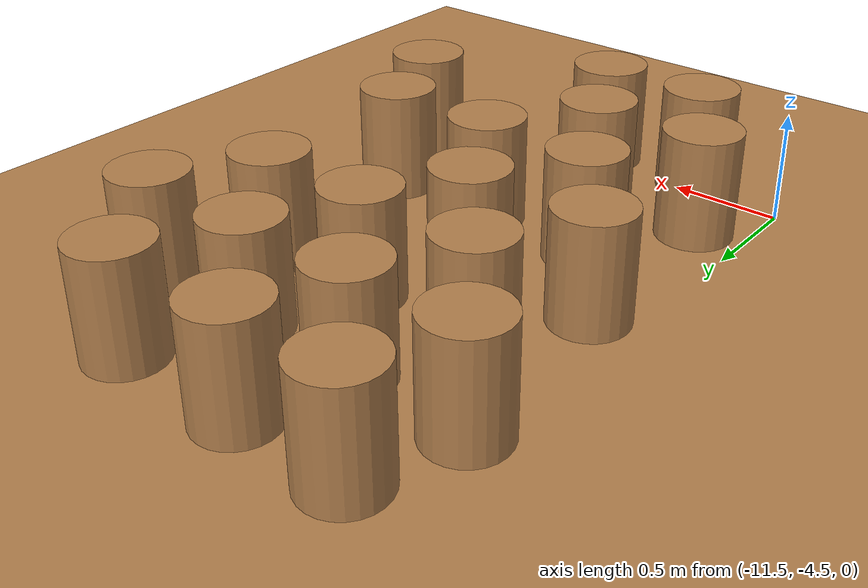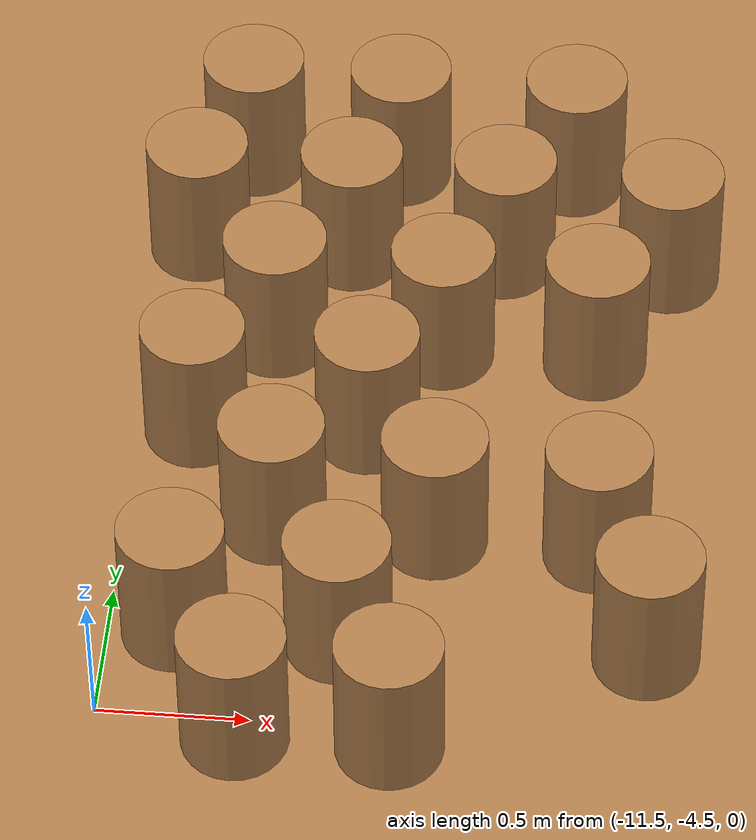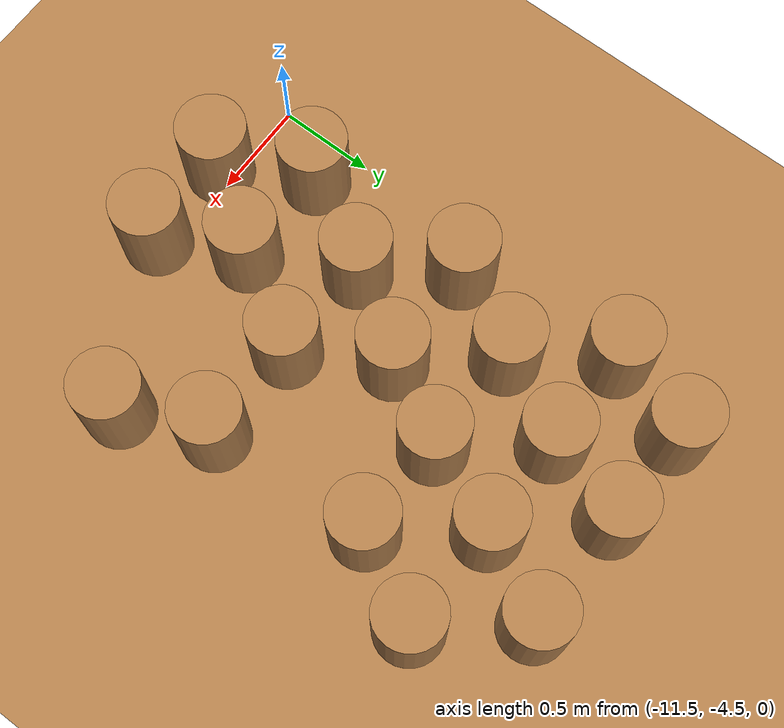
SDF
<sdf version="1.6">
 <world name="default">
  <model name="ground_plane">
   <pose>1.25 -2.75 0 0 -0 0</pose>
   <static>1</static>
   <link name="link">
    <collision name="collision">
     <geometry><plane><normal>0 0 1</normal><size>100 100</size></plane></geometry>
     <surface><friction><ode><mu>100</mu><mu2>50</mu2></ode></friction></surface>
    </collision>
    <visual name="visual">
     <cast_shadows>0</cast_shadows>
     <geometry><plane><normal>0 0 1</normal><size>32 34.75</size></plane></geometry>
     <material>
      <script><uri>file://media/materials/scripts/gazebo.material</uri><name>Gazebo/WoodFloor</name></script>
     </material>
    </visual>
   </link>
  </model>
  <model name="unit_cylinder_11_clone_clone_5_clone_35">
   <pose>-11.2814 -4.14721 0.25 0 0 -1.2e-05</pose>
   <static>1</static>
   <link name="link">
    <inertial>
     <mass>1</mass>
     <inertia><ixx>0.145833</ixx><ixy>0</ixy><ixz>0</ixz><iyy>0.145833</iyy><iyz>0</iyz><izz>0.125</izz></inertia>
    </inertial>
    <collision name="collision">
     <geometry><cylinder><radius>0.175</radius><length>0.5</length></cylinder></geometry>
    </collision>
    <visual name="visual">
     <geometry><cylinder><radius>0.175</radius><length>0.5</length></cylinder></geometry>
     <material>
      <script><name>Gazebo/Wood</name><uri>file://media/materials/scripts/gazebo.material</uri></script>
     </material>
    </visual>
   </link>
  </model>
  <model name="unit_cylinder_11_clone_clone_5_clone_36">
   <pose>-10.7505 -4.15489 0.25 0 0 -1.2e-05</pose>
   <static>1</static>
   <link name="link">
    <inertial>
     <mass>1</mass>
     <inertia><ixx>0.145833</ixx><ixy>0</ixy><ixz>0</ixz><iyy>0.145833</iyy><iyz>0</iyz><izz>0.125</izz></inertia>
    </inertial>
    <collision name="collision">
     <geometry><cylinder><radius>0.175</radius><length>0.5</length></cylinder></geometry>
    </collision>
    <visual name="visual">
     <geometry><cylinder><radius>0.175</radius><length>0.5</length></cylinder></geometry>
     <material>
      <script><name>Gazebo/Wood</name><uri>file://media/materials/scripts/gazebo.material</uri></script>
     </material>
    </visual>
   </link>
  </model>
  <model name="unit_cylinder_11_clone_clone_5_clone_38">
   <pose>-9.75939 -4.13978 0.25 0 0 -1.2e-05</pose>
   <static>1</static>
   <link name="link">
    <inertial>
     <mass>1</mass>
     <inertia><ixx>0.145833</ixx><ixy>0</ixy><ixz>0</ixz><iyy>0.145833</iyy><iyz>0</iyz><izz>0.125</izz></inertia>
    </inertial>
    <collision name="collision">
     <geometry><cylinder><radius>0.175</radius><length>0.5</length></cylinder></geometry>
    </collision>
    <visual name="visual">
     <geometry><cylinder><radius>0.175</radius><length>0.5</length></cylinder></geometry>
     <material>
      <script><name>Gazebo/Wood</name><uri>file://media/materials/scripts/gazebo.material</uri></script>
     </material>
    </visual>
   </link>
  </model>
  <model name="unit_cylinder_11_clone_clone_5_clone_44">
   <pose>-11.0092 -3.67085 0.25 0 0 -1.2e-05</pose>
   <static>1</static>
   <link name="link">
    <inertial>
     <mass>1</mass>
     <inertia><ixx>0.145833</ixx><ixy>0</ixy><ixz>0</ixz><iyy>0.145833</iyy><iyz>0</iyz><izz>0.125</izz></inertia>
    </inertial>
    <collision name="collision">
     <geometry><cylinder><radius>0.175</radius><length>0.5</length></cylinder></geometry>
    </collision>
    <visual name="visual">
     <geometry><cylinder><radius>0.175</radius><length>0.5</length></cylinder></geometry>
     <material>
      <script><name>Gazebo/Wood</name><uri>file://media/materials/scripts/gazebo.material</uri></script>
     </material>
    </visual>
   </link>
  </model>
  <model name="unit_cylinder_11_clone_clone_5_clone_45">
   <pose>-10.4774 -3.69003 0.25 0 0 -1.2e-05</pose>
   <static>1</static>
   <link name="link">
    <inertial>
     <mass>1</mass>
     <inertia><ixx>0.145833</ixx><ixy>0</ixy><ixz>0</ixz><iyy>0.145833</iyy><iyz>0</iyz><izz>0.125</izz></inertia>
    </inertial>
    <collision name="collision">
     <geometry><cylinder><radius>0.175</radius><length>0.5</length></cylinder></geometry>
    </collision>
    <visual name="visual">
     <geometry><cylinder><radius>0.175</radius><length>0.5</length></cylinder></geometry>
     <material>
      <script><name>Gazebo/Wood</name><uri>file://media/materials/scripts/gazebo.material</uri></script>
     </material>
    </visual>
   </link>
  </model>
  <model name="unit_cylinder_11_clone_clone_5_clone_46">
   <pose>-9.94585 -3.70421 0.25 0 0 -1.2e-05</pose>
   <static>1</static>
   <link name="link">
    <inertial>
     <mass>1</mass>
     <inertia><ixx>0.145833</ixx><ixy>0</ixy><ixz>0</ixz><iyy>0.145833</iyy><iyz>0</iyz><izz>0.125</izz></inertia>
    </inertial>
    <collision name="collision">
     <geometry><cylinder><radius>0.175</radius><length>0.5</length></cylinder></geometry>
    </collision>
    <visual name="visual">
     <geometry><cylinder><radius>0.175</radius><length>0.5</length></cylinder></geometry>
     <material>
      <script><name>Gazebo/Wood</name><uri>file://media/materials/scripts/gazebo.material</uri></script>
     </material>
    </visual>
   </link>
  </model>
  <model name="unit_cylinder_11_clone_clone_5_clone_53">
   <pose>-11.3129 -3.26441 0.25 0 0 -1.2e-05</pose>
   <static>1</static>
   <link name="link">
    <inertial>
     <mass>1</mass>
     <inertia><ixx>0.145833</ixx><ixy>0</ixy><ixz>0</ixz><iyy>0.145833</iyy><iyz>0</iyz><izz>0.125</izz></inertia>
    </inertial>
    <collision name="collision">
     <geometry><cylinder><radius>0.175</radius><length>0.5</length></cylinder></geometry>
    </collision>
    <visual name="visual">
     <geometry><cylinder><radius>0.175</radius><length>0.5</length></cylinder></geometry>
     <material>
      <script><name>Gazebo/Wood</name><uri>file://media/materials/scripts/gazebo.material</uri></script>
     </material>
    </visual>
   </link>
  </model>
  <model name="unit_cylinder_11_clone_clone_5_clone_54">
   <pose>-10.7369 -3.24626 0.25 0 0 -1.2e-05</pose>
   <static>1</static>
   <link name="link">
    <inertial>
     <mass>1</mass>
     <inertia><ixx>0.145833</ixx><ixy>0</ixy><ixz>0</ixz><iyy>0.145833</iyy><iyz>0</iyz><izz>0.125</izz></inertia>
    </inertial>
    <collision name="collision">
     <geometry><cylinder><radius>0.175</radius><length>0.5</length></cylinder></geometry>
    </collision>
    <visual name="visual">
     <geometry><cylinder><radius>0.175</radius><length>0.5</length></cylinder></geometry>
     <material>
      <script><name>Gazebo/Wood</name><uri>file://media/materials/scripts/gazebo.material</uri></script>
     </material>
    </visual>
   </link>
  </model>
  <model name="unit_cylinder_11_clone_clone_5_clone_52_clone_0">
   <pose>-11.0847 -2.83316 0.25 0 0 -1.2e-05</pose>
   <static>1</static>
   <link name="link">
    <inertial>
     <mass>1</mass>
     <inertia><ixx>0.145833</ixx><ixy>0</ixy><ixz>0</ixz><iyy>0.145833</iyy><iyz>0</iyz><izz>0.125</izz></inertia>
    </inertial>
    <collision name="collision">
     <geometry><cylinder><radius>0.175</radius><length>0.5</length></cylinder></geometry>
    </collision>
    <visual name="visual">
     <geometry><cylinder><radius>0.175</radius><length>0.5</length></cylinder></geometry>
     <material>
      <script><name>Gazebo/Wood</name><uri>file://media/materials/scripts/gazebo.material</uri></script>
     </material>
    </visual>
   </link>
  </model>
  <model name="unit_cylinder_11_clone_clone_5_clone_52_clone_1">
   <pose>-10.5181 -2.843 0.25 0 0 -1.2e-05</pose>
   <static>1</static>
   <link name="link">
    <inertial>
     <mass>1</mass>
     <inertia><ixx>0.145833</ixx><ixy>0</ixy><ixz>0</ixz><iyy>0.145833</iyy><iyz>0</iyz><izz>0.125</izz></inertia>
    </inertial>
    <collision name="collision">
     <geometry><cylinder><radius>0.175</radius><length>0.5</length></cylinder></geometry>
    </collision>
    <visual name="visual">
     <geometry><cylinder><radius>0.175</radius><length>0.5</length></cylinder></geometry>
     <material>
      <script><name>Gazebo/Wood</name><uri>file://media/materials/scripts/gazebo.material</uri></script>
     </material>
    </visual>
   </link>
  </model>
  <model name="unit_cylinder_11_clone_clone_5_clone_52_clone_2">
   <pose>-9.99998 -2.85033 0.25 0 0 -1.2e-05</pose>
   <static>1</static>
   <link name="link">
    <inertial>
     <mass>1</mass>
     <inertia><ixx>0.145833</ixx><ixy>0</ixy><ixz>0</ixz><iyy>0.145833</iyy><iyz>0</iyz><izz>0.125</izz></inertia>
    </inertial>
    <collision name="collision">
     <geometry><cylinder><radius>0.175</radius><length>0.5</length></cylinder></geometry>
    </collision>
    <visual name="visual">
     <geometry><cylinder><radius>0.175</radius><length>0.5</length></cylinder></geometry>
     <material>
      <script><name>Gazebo/Wood</name><uri>file://media/materials/scripts/gazebo.material</uri></script>
     </material>
    </visual>
   </link>
  </model>
  <model name="unit_cylinder_11_clone_clone_5_clone_52_clone_8">
   <pose>-11.3965 -2.4007 0.25 0 0 -1.2e-05</pose>
   <static>1</static>
   <link name="link">
    <inertial>
     <mass>1</mass>
     <inertia><ixx>0.145833</ixx><ixy>0</ixy><ixz>0</ixz><iyy>0.145833</iyy><iyz>0</iyz><izz>0.125</izz></inertia>
    </inertial>
    <collision name="collision">
     <geometry><cylinder><radius>0.175</radius><length>0.5</length></cylinder></geometry>
    </collision>
    <visual name="visual">
     <geometry><cylinder><radius>0.175</radius><length>0.5</length></cylinder></geometry>
     <material>
      <script><name>Gazebo/Wood</name><uri>file://media/materials/scripts/gazebo.material</uri></script>
     </material>
    </visual>
   </link>
  </model>
  <model name="unit_cylinder_11_clone_clone_5_clone_52_clone_17">
   <pose>-11.2481 -1.96723 0.25 0 0 -1.2e-05</pose>
   <static>1</static>
   <link name="link">
    <inertial>
     <mass>1</mass>
     <inertia><ixx>0.145833</ixx><ixy>0</ixy><ixz>0</ixz><iyy>0.145833</iyy><iyz>0</iyz><izz>0.125</izz></inertia>
    </inertial>
    <collision name="collision">
     <geometry><cylinder><radius>0.175</radius><length>0.5</length></cylinder></geometry>
    </collision>
    <visual name="visual">
     <geometry><cylinder><radius>0.175</radius><length>0.5</length></cylinder></geometry>
     <material>
      <script><name>Gazebo/Wood</name><uri>file://media/materials/scripts/gazebo.material</uri></script>
     </material>
    </visual>
   </link>
  </model>
  <model name="unit_cylinder_11_clone_clone_5_clone_52_clone_18">
   <pose>-10.7347 -1.97429 0.25 0 0 -1.2e-05</pose>
   <static>1</static>
   <link name="link">
    <inertial>
     <mass>1</mass>
     <inertia><ixx>0.145833</ixx><ixy>0</ixy><ixz>0</ixz><iyy>0.145833</iyy><iyz>0</iyz><izz>0.125</izz></inertia>
    </inertial>
    <collision name="collision">
     <geometry><cylinder><radius>0.175</radius><length>0.5</length></cylinder></geometry>
    </collision>
    <visual name="visual">
     <geometry><cylinder><radius>0.175</radius><length>0.5</length></cylinder></geometry>
     <material>
      <script><name>Gazebo/Wood</name><uri>file://media/materials/scripts/gazebo.material</uri></script>
     </material>
    </visual>
   </link>
  </model>
  <model name="unit_cylinder_11_clone_clone_5_clone_52_clone_19">
   <pose>-10.1242 -1.97671 0.25 0 0 -1.2e-05</pose>
   <static>1</static>
   <link name="link">
    <inertial>
     <mass>1</mass>
     <inertia><ixx>0.145833</ixx><ixy>0</ixy><ixz>0</ixz><iyy>0.145833</iyy><iyz>0</iyz><izz>0.125</izz></inertia>
    </inertial>
    <collision name="collision">
     <geometry><cylinder><radius>0.175</radius><length>0.5</length></cylinder></geometry>
    </collision>
    <visual name="visual">
     <geometry><cylinder><radius>0.175</radius><length>0.5</length></cylinder></geometry>
     <material>
      <script><name>Gazebo/Wood</name><uri>file://media/materials/scripts/gazebo.material</uri></script>
     </material>
    </visual>
   </link>
  </model>
  <model name="unit_cylinder_11_clone_clone_5_clone_32_clone_3">
   <pose>-10.5493 -4.56984 0.25 0 0 -1.2e-05</pose>
   <static>1</static>
   <link name="link">
    <inertial>
     <mass>1</mass>
     <inertia><ixx>0.145833</ixx><ixy>0</ixy><ixz>0</ixz><iyy>0.145833</iyy><iyz>0</iyz><izz>0.125</izz></inertia>
    </inertial>
    <collision name="collision">
     <geometry><cylinder><radius>0.175</radius><length>0.5</length></cylinder></geometry>
    </collision>
    <visual name="visual">
     <geometry><cylinder><radius>0.175</radius><length>0.5</length></cylinder></geometry>
     <material>
      <script><name>Gazebo/Wood</name><uri>file://media/materials/scripts/gazebo.material</uri></script>
     </material>
    </visual>
   </link>
  </model>
  <model name="unit_cylinder_11_clone_clone_5_clone_32_clone_4">
   <pose>-11.0409 -4.5722 0.25 0 0 -1.2e-05</pose>
   <static>1</static>
   <link name="link">
    <inertial>
     <mass>1</mass>
     <inertia><ixx>0.145833</ixx><ixy>0</ixy><ixz>0</ixz><iyy>0.145833</iyy><iyz>0</iyz><izz>0.125</izz></inertia>
    </inertial>
    <collision name="collision">
     <geometry><cylinder><radius>0.175</radius><length>0.5</length></cylinder></geometry>
    </collision>
    <visual name="visual">
     <geometry><cylinder><radius>0.175</radius><length>0.5</length></cylinder></geometry>
     <material>
      <script><name>Gazebo/Wood</name><uri>file://media/materials/scripts/gazebo.material</uri></script>
     </material>
    </visual>
   </link>
  </model>
  <model name="unit_cylinder_11_clone_clone_5_clone_52_clone_10_clone">
   <pose>-10.8657 -2.40242 0.25 0 0 -1.2e-05</pose>
   <static>1</static>
   <link name="link">
    <inertial>
     <mass>1</mass>
     <inertia><ixx>0.145833</ixx><ixy>0</ixy><ixz>0</ixz><iyy>0.145833</iyy><iyz>0</iyz><izz>0.125</izz></inertia>
    </inertial>
    <collision name="collision">
     <geometry><cylinder><radius>0.175</radius><length>0.5</length></cylinder></geometry>
    </collision>
    <visual name="visual">
     <geometry><cylinder><radius>0.175</radius><length>0.5</length></cylinder></geometry>
     <material>
      <script><name>Gazebo/Wood</name><uri>file://media/materials/scripts/gazebo.material</uri></script>
     </material>
    </visual>
   </link>
  </model>
  <model name="unit_cylinder_11_clone_clone_5_clone_52_clone_12_clone">
   <pose>-9.77119 -2.41932 0.25 0 0 -1.2e-05</pose>
   <static>1</static>
   <link name="link">
    <inertial>
     <mass>1</mass>
     <inertia><ixx>0.145833</ixx><ixy>0</ixy><ixz>0</ixz><iyy>0.145833</iyy><iyz>0</iyz><izz>0.125</izz></inertia>
    </inertial>
    <collision name="collision">
     <geometry><cylinder><radius>0.175</radius><length>0.5</length></cylinder></geometry>
    </collision>
    <visual name="visual">
     <geometry><cylinder><radius>0.175</radius><length>0.5</length></cylinder></geometry>
     <material>
      <script><name>Gazebo/Wood</name><uri>file://media/materials/scripts/gazebo.material</uri></script>
     </material>
    </visual>
   </link>
  </model>
  <model name="unit_cylinder_11_clone_clone_5_clone_52_clone_12_clone_clone">
   <pose>-10.341 -2.39724 0.25 0 0 -1.2e-05</pose>
   <static>1</static>
   <link name="link">
    <inertial>
     <mass>1</mass>
     <inertia><ixx>0.145833</ixx><ixy>0</ixy><ixz>0</ixz><iyy>0.145833</iyy><iyz>0</iyz><izz>0.125</izz></inertia>
    </inertial>
    <collision name="collision">
     <geometry><cylinder><radius>0.175</radius><length>0.5</length></cylinder></geometry>
    </collision>
    <visual name="visual">
     <geometry><cylinder><radius>0.175</radius><length>0.5</length></cylinder></geometry>
     <material>
      <script><name>Gazebo/Wood</name><uri>file://media/materials/scripts/gazebo.material</uri></script>
     </material>
    </visual>
   </link>
  </model>
 </world>
</sdf>
